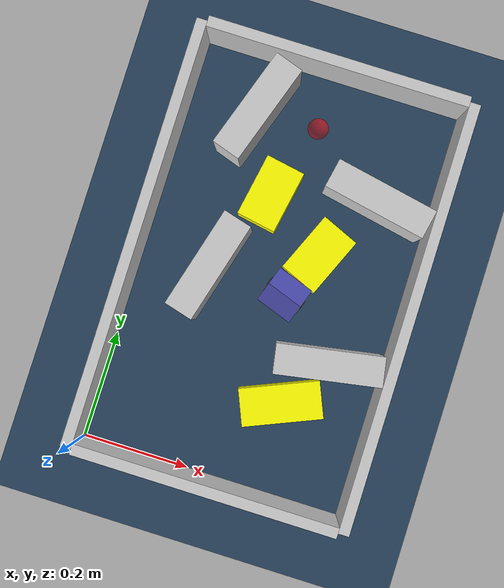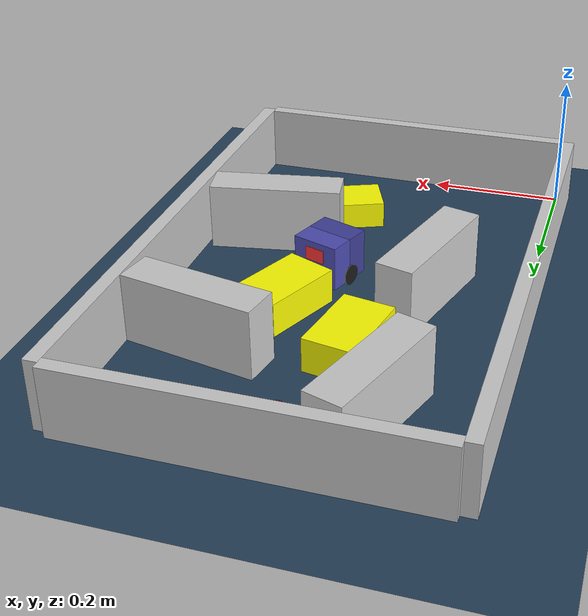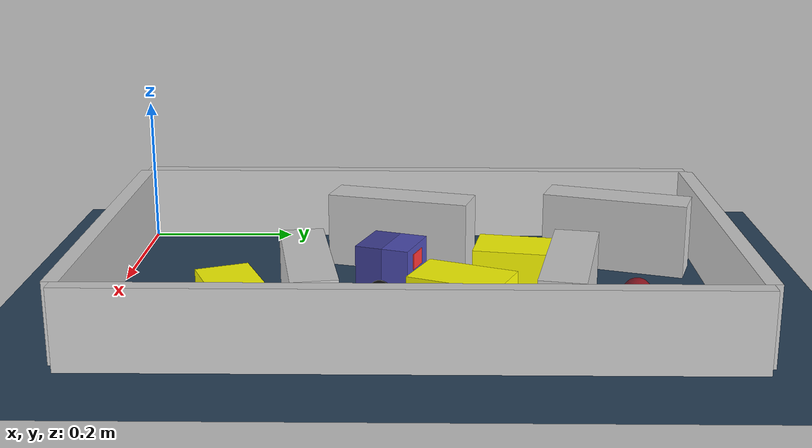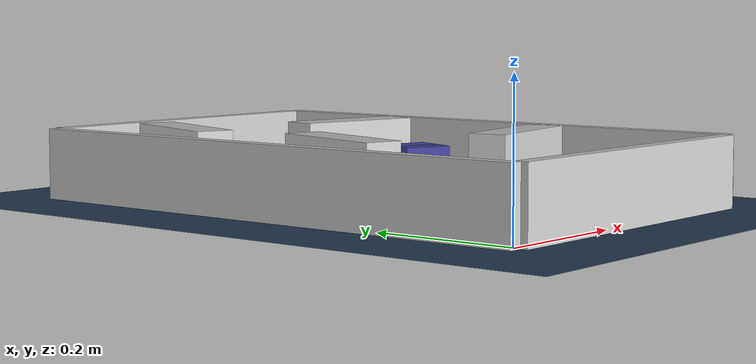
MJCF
<?xml version='1.0' encoding='utf-8'?>
<mujoco model="real_buildable">
  <compiler angle="degree" />
  <option timestep="0.002" integrator="implicitfast" iterations="100" cone="elliptic" />
  <default>
    <geom density="1" />
  </default>
  <asset>
    <texture builtin="gradient" height="3072" rgb1="0.3 0.5 0.7" rgb2="0 0 0" type="skybox" width="512" />
    <texture builtin="checker" height="300" mark="edge" markrgb="0.8 0.8 0.8" name="groundplane" rgb1="0.2 0.3 0.4" rgb2="0.1 0.2 0.3" type="2d" width="300" />
    <material name="groundplane" reflectance="0.2" texrepeat="5 5" texture="groundplane" texuniform="true" />
  </asset>
  <worldbody>
    <light dir="0 0 -1" directional="true" pos="0 0 1.5" />
    <geom name="floor" type="plane" condim="4" friction="0.5 0.005 0.001" material="groundplane" size="0 0 0.05" />
    <body name="walls">
      <geom name="wall_boundary_left" type="box" condim="4" friction="1.0 0.005 0.0001" rgba="0.8 0.8 0.8 1" pos="-0.010000 0.387500 0.050000" euler="0 0 0.000000" size="0.010000 0.397500 0.050000" />
      <geom name="wall_boundary_right" type="box" condim="4" friction="1.0 0.005 0.0001" rgba="0.8 0.8 0.8 1" pos="0.500000 0.387500 0.050000" euler="0 0 0.000000" size="0.010000 0.397500 0.050000" />
      <geom name="wall_boundary_bottom" type="box" condim="4" friction="1.0 0.005 0.0001" rgba="0.8 0.8 0.8 1" pos="0.245000 -0.010000 0.050000" euler="0 0 0.000000" size="0.245000 0.010000 0.050000" />
      <geom name="wall_boundary_top" type="box" condim="4" friction="1.0 0.005 0.0001" rgba="0.8 0.8 0.8 1" pos="0.245000 0.785000 0.050000" euler="0 0 0.000000" size="0.245000 0.010000 0.050000" />
      <geom name="wall_inner_1" type="box" condim="4" friction="1.0 0.005 0.0001" rgba="0.8 0.8 0.8 1" pos="0.389214 0.264573 0.050000" euler="0 0 9.954213" size="0.097500 0.027500 0.050000" />
      <geom name="wall_inner_2" type="box" condim="4" friction="1.0 0.005 0.0001" rgba="0.8 0.8 0.8 1" pos="0.132042 0.369672 0.050000" euler="0 0 74.577875" size="0.097500 0.027500 0.050000" />
      <geom name="wall_inner_3" type="box" condim="4" friction="1.0 0.005 0.0001" rgba="0.8 0.8 0.8 1" pos="0.389000 0.573000 0.050000" euler="0 0 168.800000" size="0.097500 0.027500 0.050000" />
      <geom name="wall_inner_4" type="box" condim="4" friction="1.0 0.005 0.0001" rgba="0.8 0.8 0.8 1" pos="0.131000 0.666000 0.050000" euler="0 0 71.600000" size="0.097500 0.027500 0.050000" />
    </body>
    <body name="car" pos="0.27728000304593015 0.35959022828360798 0.01" quat="0.81602848909227665 0 0 0.57801168239904632">
      <freejoint name="car_freejoint" />
      <inertial pos="0 0 0.0375" mass="0.35" diaginertia="0.000266 0.000266 0.000286" />
      <geom name="front_chassis_collision" type="box" pos="0.0175 0 0.0375" size="0.0175 0.035 0.0325" rgba="0.3 0.3 0.7 1" />
      <geom name="rear_chassis_collision" type="box" pos="-0.0175 0 0.0375" size="0.0175 0.035 0.0325" rgba="0.25 0.25 0.6 1" />
      <geom name="front_marker" type="box" pos="0.034 0 0.0505" size="0.002 0.015 0.01" rgba="1 0.2 0.2 1" contype="0" conaffinity="0" />
      <body name="rear_support_body" pos="-0.03 0 0.0025">
        <joint name="rear_caster_joint" type="ball" damping="0.0001" />
        <inertial pos="0 0 0" mass="0.025" diaginertia="0.000001 0.000001 0.000001" />
        <geom name="rear_support" type="sphere" pos="0 0 0" size="0.0025" friction="0 0 0" rgba="0.7 0.1 0.1 1" />
      </body>
      <body name="front_support_body" pos="0.03 0 0.0025">
        <joint name="front_caster_joint" type="ball" damping="0.0001" />
        <inertial pos="0 0 0" mass="0.025" diaginertia="0.000001 0.000001 0.000001" />
        <geom name="front_support" type="sphere" pos="0 0 0" size="0.0025" friction="0 0 0" rgba="0.1 0.7 0.1 1" />
      </body>
      <body name="left_wheel" pos="0 0.0375 0.015">
        <inertial pos="0 0 0" mass="0.05" diaginertia="0.000003 0.000006 0.000003" />
        <joint name="left_wheel_joint" type="hinge" axis="0 1 0" damping="0.01" armature="0.0001" />
        <geom name="left_wheel_collision" type="cylinder" size="0.015 0.0005" euler="90 0 0" rgba="0.1 0.1 0.1 1" />
      </body>
      <body name="right_wheel" pos="0 -0.0375 0.015">
        <inertial pos="0 0 0" mass="0.05" diaginertia="0.000003 0.000006 0.000003" />
        <joint name="right_wheel_joint" type="hinge" axis="0 1 0" damping="0.01" armature="0.0001" />
        <geom name="right_wheel_collision" type="cylinder" size="0.015 0.0005" euler="90 0 0" rgba="0.1 0.1 0.1 1" />
      </body>
    </body>
    <body name="obstacle_0_movable">
      <geom name="obstacle_0_movable" condim="4" pos="0.31629084930822216 0.44917300057986509 0.025000000000000001" friction="1 0.005 0.0001" rgba="1 1 0 1" size="0.037500 0.060000 0.025000" type="box" mass="0.1" quat="0.200766453785793 0 0 0.97963913306598627" />
      <joint type="free" />
    </body>
    <body name="obstacle_1_movable">
      <geom name="obstacle_1_movable" condim="4" pos="0.19800000000000006 0.52999999999999958 0.025000000000000001" friction="1 0.005 0.0001" rgba="1 1 0 1" size="0.037500 0.060000 0.025000" type="box" mass="0.1" quat="0.99596311124798731 0 0 -0.089763472711505476" />
      <joint type="free" />
    </body>
    <body name="obstacle_2_movable">
      <geom name="obstacle_2_movable" condim="4" pos="0.33028000000000013 0.16864400000000002 0.02" friction="1 0.005 0.0001" rgba="1 1 0 1" size="0.035000 0.075000 0.020000" type="box" mass="0.1" quat="0.55294471187460548 0 0 0.83321794604407651" />
      <joint type="free" />
    </body>
    <site name="goal" type="sphere" pos="0.245000 0.680000 0.0" size="0.02" rgba="1 0 0 0.5" />
  </worldbody>
  <actuator>
    <velocity name="left_wheel_drive" joint="left_wheel_joint" ctrlrange="-25 25" kv="0.75" forcerange="-0.5 0.5" />
    <velocity name="right_wheel_drive" joint="right_wheel_joint" ctrlrange="-25 25" kv="0.75" forcerange="-0.5 0.5" />
  </actuator>
</mujoco>
